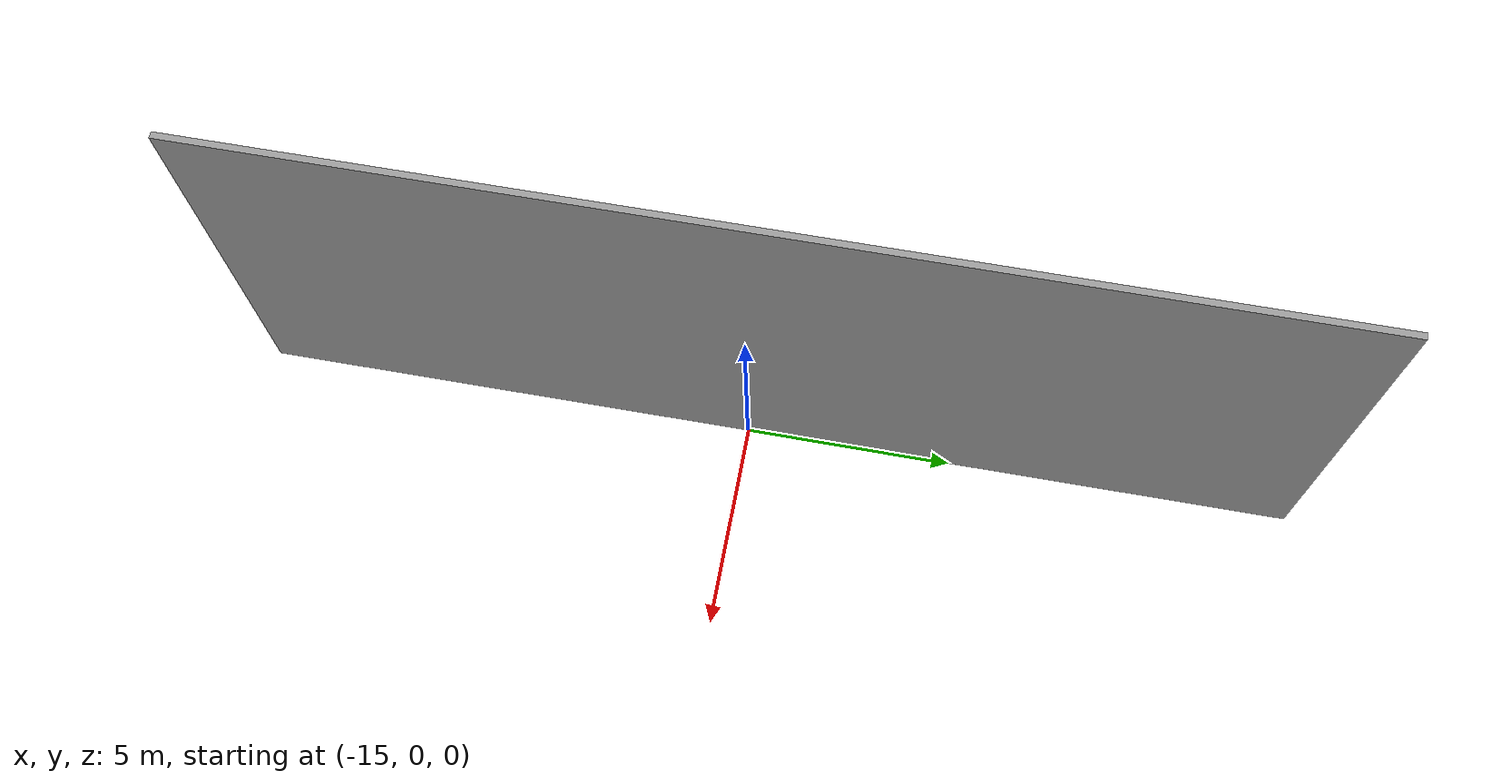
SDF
<sdf version="1.6">
 <world name="default">
  <model name="Wall_clone_clone">
   <link name="link_0">
    <inertial>
     <mass>0.467221</mass>
     <inertia>
      <ixx>0.0398434</ixx>
      <ixy>0</ixy>
      <ixz>0</ixz>
      <iyy>0.391224</iyy>
      <iyz>0</iyz>
      <izz>0.353198</izz>
     </inertia>
    </inertial>
    <visual name="visual">
     <geometry><box><size>25.2956 0.152736 10.2725</size></box></geometry>
     <material>
      <lighting>1</lighting>
      <script><uri>file://media/materials/scripts/gazebo.material</uri><name>Gazebo/Grey</name></script>
     </material>
    </visual>
    <collision name="collision">
     <geometry><box><size>25.2956 0.152736 10.2725</size></box></geometry>
     <surface>
      <friction>
       <ode><mu>1</mu><mu2>1</mu2><fdir1>0 0 0</fdir1><slip1>0</slip1><slip2>0</slip2></ode>
       <torsional>
        <coefficient>1</coefficient>
        <patch_radius>0</patch_radius>
        <surface_radius>0</surface_radius>
        <use_patch_radius>1</use_patch_radius>
        <ode><slip>0</slip></ode>
       </torsional>
      </friction>
      <bounce><restitution_coefficient>0</restitution_coefficient><threshold>1e+06</threshold></bounce>
      <contact>
       <collide_without_contact>0</collide_without_contact>
       <collide_without_contact_bitmask>1</collide_without_contact_bitmask>
       <collide_bitmask>1</collide_bitmask>
       <ode>
        <soft_cfm>0</soft_cfm>
        <soft_erp>0.2</soft_erp>
        <kp>1e+13</kp>
        <kd>1</kd>
        <max_vel>0.01</max_vel>
        <min_depth>0</min_depth>
       </ode>
       <bullet>
        <split_impulse>1</split_impulse>
        <split_impulse_penetration_threshold>-0.01</split_impulse_penetration_threshold>
        <soft_cfm>0</soft_cfm>
        <soft_erp>0.2</soft_erp>
        <kp>1e+13</kp>
        <kd>1</kd>
       </bullet>
      </contact>
     </surface>
    </collision>
   </link>
   <static>1</static>
   <pose>-15.1083 0.607308 5.05164 0 0 -1.5708</pose>
  </model>
 </world>
</sdf>
